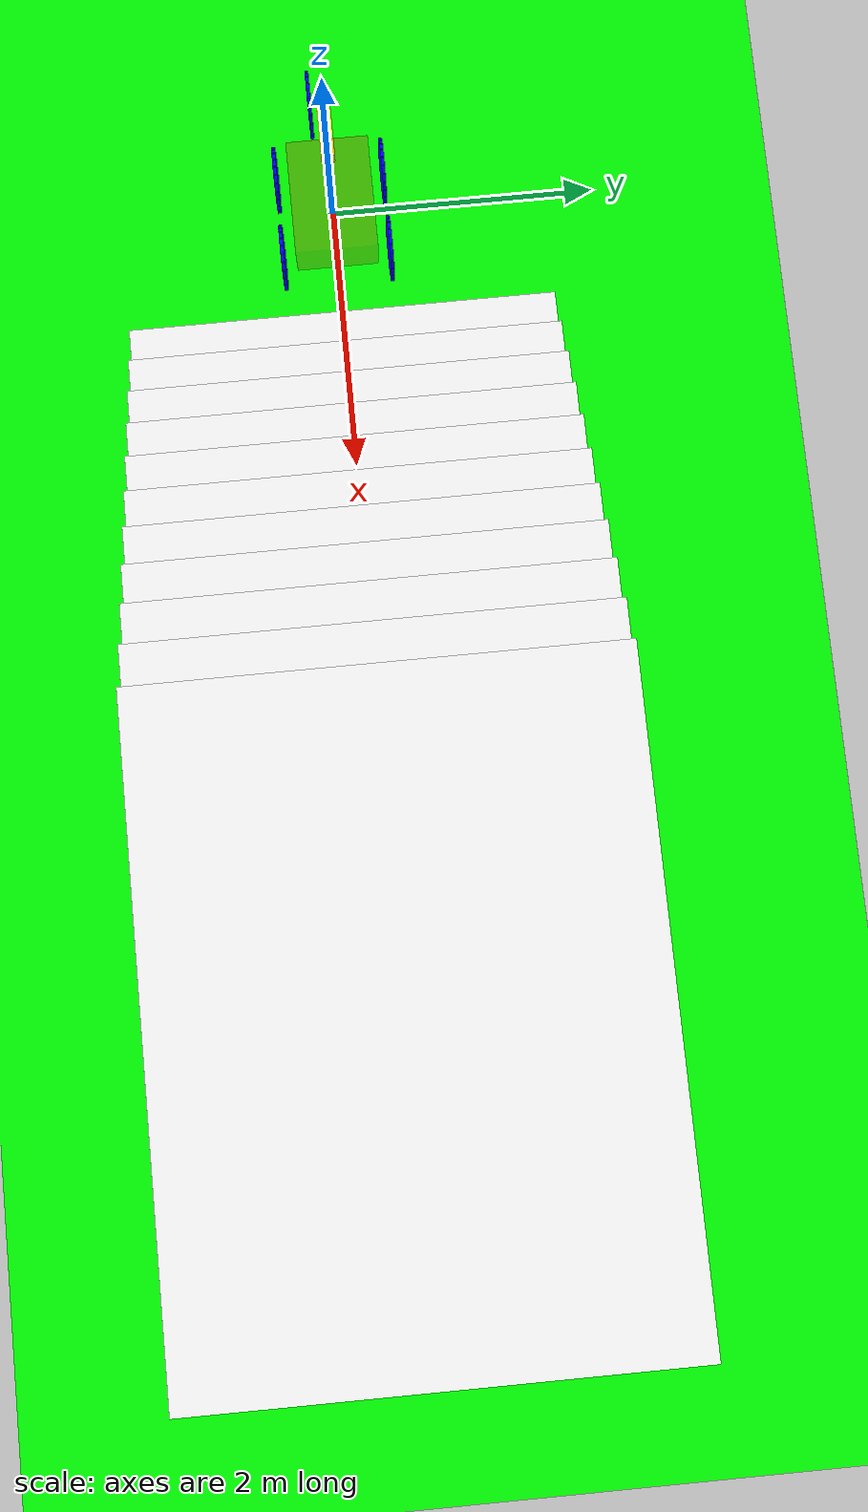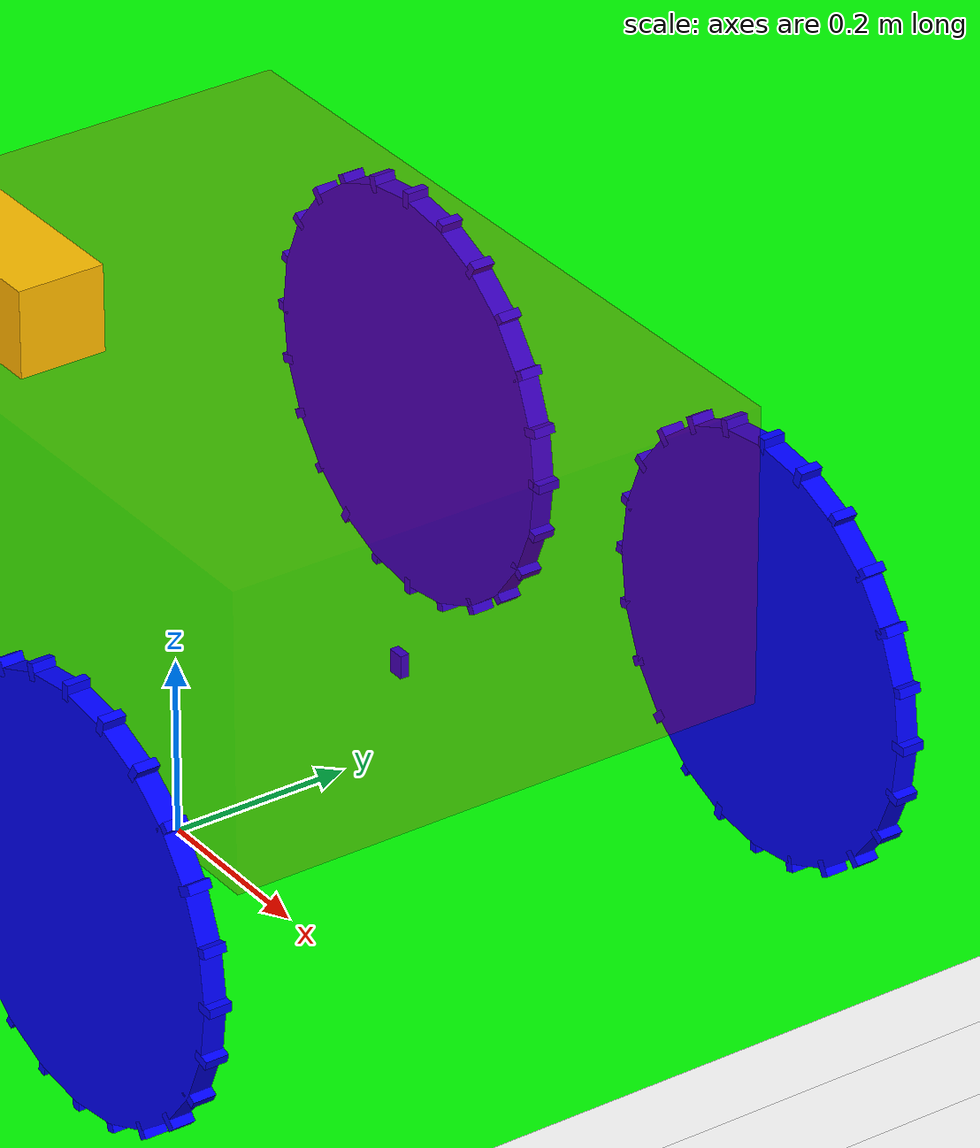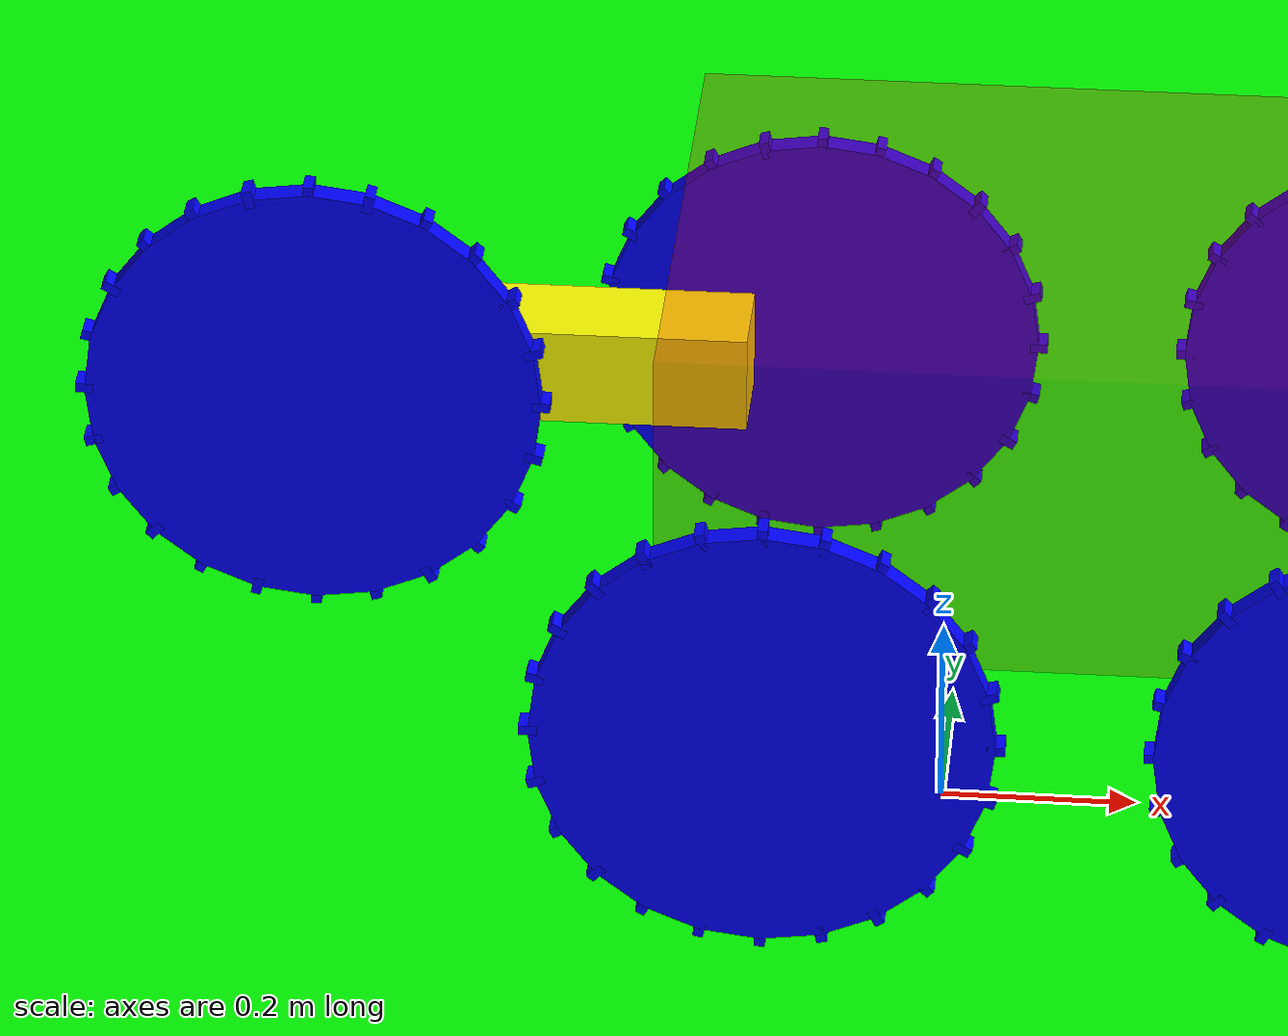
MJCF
<mujoco model="env">
    <option timestep="0.0025" />
    <actuator>
        <motor gear="1.0" ctrllimited= "false" ctrlrange="-75.0 75.0" joint="wheel0" name="motor0"/>
        <motor gear="1.0" ctrllimited= "false" ctrlrange="-75.0 75.0" joint="wheel1" name="motor1"/>
        <motor gear="1.0" ctrllimited= "false" ctrlrange="-75.0 75.0" joint="wheel2" name="motor2"/>
        <motor gear="1.0" ctrllimited= "false" ctrlrange="-75.0 75.0" joint="wheel3" name="motor3"/>
        <motor gear="1.0" ctrllimited= "false" ctrlrange="-75.0 75.0" joint="wheel4" name="motor4"/>
    </actuator>
    <sensor>
        <torque name='torq0' site='wheel0_t'/>
    </sensor>

    <worldbody>
        <body name="frame" pos="0.15 0 0.5">
            <geom mass="50.0" pos="0.0 0.0 0.0" rgba="1 0 0 .25" size="0.42 0.3 0.1651" type="box"></geom>
            <joint type='free' name='frame:base' pos='0 0 0'/>
			<camera euler="0 0 0" fovy="40" name="rgb" pos="0 0 2.5"></camera>
            <body name="mass0" pos="0.25 0.0000 -0.1" >
                <geom mass="40." rgba="0 0 1 1" size="0.009 0.005 0.0125" type="box"/>
            </body>
			<body name="lf_wheel" pos="0.305 -0.4 -0.19" quat="0.7071067811865476 0.7071067811865476 0 0">
				<geom mass="1" rgba="0 0 1 1" size="0.2286 0.0125" type="cylinder"/>
				<joint axis="0 0 1" name="wheel0" type="hinge"/>

				<body name="lf_tread0" pos="0.2286 0.0000 0.0" quat="1.000000 0.0 0.0 0.000000">
					<geom mass="0.001" rgba="0 0 1 1" size="0.009 0.005 0.0125" type="box"/>
				</body>
				<body name="lf_tread1" pos="0.2208 0.0592 0.0" quat="0.991445 0.0 0.0 0.130526">
					<geom mass="0.001" rgba="0 0 1 1" size="0.009 0.005 0.0125" type="box"/>
				</body>
				<body name="lf_tread2" pos="0.1980 0.1143 0.0" quat="0.965926 0.0 0.0 0.258819">
					<geom mass="0.001" rgba="0 0 1 1" size="0.009 0.005 0.0125" type="box"/>
				</body>
				<body name="lf_tread3" pos="0.1616 0.1616 0.0" quat="0.923880 0.0 0.0 0.382683">
					<geom mass="0.001" rgba="0 0 1 1" size="0.009 0.005 0.0125" type="box"/>
				</body>
				<body name="lf_tread4" pos="0.1143 0.1980 0.0" quat="0.866025 0.0 0.0 0.500000">
					<geom mass="0.001" rgba="0 0 1 1" size="0.009 0.005 0.0125" type="box"/>
				</body>
				<body name="lf_tread5" pos="0.0592 0.2208 0.0" quat="0.793353 0.0 0.0 0.608761">
					<geom mass="0.001" rgba="0 0 1 1" size="0.009 0.005 0.0125" type="box"/>
				</body>
				<body name="lf_tread6" pos="-0.0000 0.2286 0.0" quat="0.707107 0.0 0.0 0.707107">
					<geom mass="0.001" rgba="0 0 1 1" size="0.009 0.005 0.0125" type="box"/>
				</body>
				<body name="lf_tread7" pos="-0.0592 0.2208 0.0" quat="0.608761 0.0 0.0 0.793353">
					<geom mass="0.001" rgba="0 0 1 1" size="0.009 0.005 0.0125" type="box"/>
				</body>
				<body name="lf_tread8" pos="-0.1143 0.1980 0.0" quat="0.500000 0.0 0.0 0.866025">
					<geom mass="0.001" rgba="0 0 1 1" size="0.009 0.005 0.0125" type="box"/>
				</body>
				<body name="lf_tread9" pos="-0.1616 0.1616 0.0" quat="0.382683 0.0 0.0 0.923880">
					<geom mass="0.001" rgba="0 0 1 1" size="0.009 0.005 0.0125" type="box"/>
				</body>
				<body name="lf_tread10" pos="-0.1980 0.1143 0.0" quat="0.258819 0.0 0.0 0.965926">
					<geom mass="0.001" rgba="0 0 1 1" size="0.009 0.005 0.0125" type="box"/>
				</body>
				<body name="lf_tread11" pos="-0.2208 0.0592 0.0" quat="0.130526 0.0 0.0 0.991445">
					<geom mass="0.001" rgba="0 0 1 1" size="0.009 0.005 0.0125" type="box"/>
				</body>
				<body name="lf_tread12" pos="-0.2286 -0.0000 0.0" quat="-0.000000 0.0 0.0 1.000000">
					<geom mass="0.001" rgba="0 0 1 1" size="0.009 0.005 0.0125" type="box"/>
				</body>
				<body name="lf_tread13" pos="-0.2208 -0.0592 0.0" quat="-0.130526 0.0 0.0 0.991445">
					<geom mass="0.001" rgba="0 0 1 1" size="0.009 0.005 0.0125" type="box"/>
				</body>
				<body name="lf_tread14" pos="-0.1980 -0.1143 0.0" quat="-0.258819 0.0 0.0 0.965926">
					<geom mass="0.001" rgba="0 0 1 1" size="0.009 0.005 0.0125" type="box"/>
				</body>
				<body name="lf_tread15" pos="-0.1616 -0.1616 0.0" quat="-0.382683 0.0 0.0 0.923880">
					<geom mass="0.001" rgba="0 0 1 1" size="0.009 0.005 0.0125" type="box"/>
				</body>
				<body name="lf_tread16" pos="-0.1143 -0.1980 0.0" quat="-0.500000 0.0 0.0 0.866025">
					<geom mass="0.001" rgba="0 0 1 1" size="0.009 0.005 0.0125" type="box"/>
				</body>
				<body name="lf_tread17" pos="-0.0592 -0.2208 0.0" quat="-0.608761 0.0 0.0 0.793353">
					<geom mass="0.001" rgba="0 0 1 1" size="0.009 0.005 0.0125" type="box"/>
				</body>
				<body name="lf_tread18" pos="0.0000 -0.2286 0.0" quat="-0.707107 0.0 0.0 0.707107">
					<geom mass="0.001" rgba="0 0 1 1" size="0.009 0.005 0.0125" type="box"/>
				</body>
				<body name="lf_tread19" pos="0.0592 -0.2208 0.0" quat="-0.793353 0.0 0.0 0.608761">
					<geom mass="0.001" rgba="0 0 1 1" size="0.009 0.005 0.0125" type="box"/>
				</body>
				<body name="lf_tread20" pos="0.1143 -0.1980 0.0" quat="-0.866025 0.0 0.0 0.500000">
					<geom mass="0.001" rgba="0 0 1 1" size="0.009 0.005 0.0125" type="box"/>
				</body>
				<body name="lf_tread21" pos="0.1616 -0.1616 0.0" quat="-0.923880 0.0 0.0 0.382683">
					<geom mass="0.001" rgba="0 0 1 1" size="0.009 0.005 0.0125" type="box"/>
				</body>
				<body name="lf_tread22" pos="0.1980 -0.1143 0.0" quat="-0.965926 0.0 0.0 0.258819">
					<geom mass="0.001" rgba="0 0 1 1" size="0.009 0.005 0.0125" type="box"/>
				</body>
				<body name="lf_tread23" pos="0.2208 -0.0592 0.0" quat="-0.991445 0.0 0.0 0.130526">
					<geom mass="0.001" rgba="0 0 1 1" size="0.009 0.005 0.0125" type="box"/>
				</body>
			</body>
			<body name="rf_wheel" pos="0.305 0.4 -0.19" quat="0.7071067811865476 0.7071067811865476 0 0">
				<geom mass="1" rgba="0 0 1 1" size="0.2286 0.0125" type="cylinder"/>
				<joint axis="0 0 1" name="wheel1" type="hinge"/>
				<site name="wheel1_t" pos="0 0 0.0" size='0.00005 0.00005 0.00005' rgba='0 1 0 1' type='sphere'/>
				<body name="rf_tread0" pos="0.2286 0.0000 0.0" quat="1.000000 0.0 0.0 0.000000">
					<geom mass="0.001" rgba="0 0 1 1" size="0.009 0.005 0.0125" type="box"/>
				</body>
				<body name="rf_tread1" pos="0.2208 0.0592 0.0" quat="0.991445 0.0 0.0 0.130526">
					<geom mass="0.001" rgba="0 0 1 1" size="0.009 0.005 0.0125" type="box"/>
				</body>
				<body name="rf_tread2" pos="0.1980 0.1143 0.0" quat="0.965926 0.0 0.0 0.258819">
					<geom mass="0.001" rgba="0 0 1 1" size="0.009 0.005 0.0125" type="box"/>
				</body>
				<body name="rf_tread3" pos="0.1616 0.1616 0.0" quat="0.923880 0.0 0.0 0.382683">
					<geom mass="0.001" rgba="0 0 1 1" size="0.009 0.005 0.0125" type="box"/>
				</body>
				<body name="rf_tread4" pos="0.1143 0.1980 0.0" quat="0.866025 0.0 0.0 0.500000">
					<geom mass="0.001" rgba="0 0 1 1" size="0.009 0.005 0.0125" type="box"/>
				</body>
				<body name="rf_tread5" pos="0.0592 0.2208 0.0" quat="0.793353 0.0 0.0 0.608761">
					<geom mass="0.001" rgba="0 0 1 1" size="0.009 0.005 0.0125" type="box"/>
				</body>
				<body name="rf_tread6" pos="-0.0000 0.2286 0.0" quat="0.707107 0.0 0.0 0.707107">
					<geom mass="0.001" rgba="0 0 1 1" size="0.009 0.005 0.0125" type="box"/>
				</body>
				<body name="rf_tread7" pos="-0.0592 0.2208 0.0" quat="0.608761 0.0 0.0 0.793353">
					<geom mass="0.001" rgba="0 0 1 1" size="0.009 0.005 0.0125" type="box"/>
				</body>
				<body name="rf_tread8" pos="-0.1143 0.1980 0.0" quat="0.500000 0.0 0.0 0.866025">
					<geom mass="0.001" rgba="0 0 1 1" size="0.009 0.005 0.0125" type="box"/>
				</body>
				<body name="rf_tread9" pos="-0.1616 0.1616 0.0" quat="0.382683 0.0 0.0 0.923880">
					<geom mass="0.001" rgba="0 0 1 1" size="0.009 0.005 0.0125" type="box"/>
				</body>
				<body name="rf_tread10" pos="-0.1980 0.1143 0.0" quat="0.258819 0.0 0.0 0.965926">
					<geom mass="0.001" rgba="0 0 1 1" size="0.009 0.005 0.0125" type="box"/>
				</body>
				<body name="rf_tread11" pos="-0.2208 0.0592 0.0" quat="0.130526 0.0 0.0 0.991445">
					<geom mass="0.001" rgba="0 0 1 1" size="0.009 0.005 0.0125" type="box"/>
				</body>
				<body name="rf_tread12" pos="-0.2286 -0.0000 0.0" quat="-0.000000 0.0 0.0 1.000000">
					<geom mass="0.001" rgba="0 0 1 1" size="0.009 0.005 0.0125" type="box"/>
				</body>
				<body name="rf_tread13" pos="-0.2208 -0.0592 0.0" quat="-0.130526 0.0 0.0 0.991445">
					<geom mass="0.001" rgba="0 0 1 1" size="0.009 0.005 0.0125" type="box"/>
				</body>
				<body name="rf_tread14" pos="-0.1980 -0.1143 0.0" quat="-0.258819 0.0 0.0 0.965926">
					<geom mass="0.001" rgba="0 0 1 1" size="0.009 0.005 0.0125" type="box"/>
				</body>
				<body name="rf_tread15" pos="-0.1616 -0.1616 0.0" quat="-0.382683 0.0 0.0 0.923880">
					<geom mass="0.001" rgba="0 0 1 1" size="0.009 0.005 0.0125" type="box"/>
				</body>
				<body name="rf_tread16" pos="-0.1143 -0.1980 0.0" quat="-0.500000 0.0 0.0 0.866025">
					<geom mass="0.001" rgba="0 0 1 1" size="0.009 0.005 0.0125" type="box"/>
				</body>
				<body name="rf_tread17" pos="-0.0592 -0.2208 0.0" quat="-0.608761 0.0 0.0 0.793353">
					<geom mass="0.001" rgba="0 0 1 1" size="0.009 0.005 0.0125" type="box"/>
				</body>
				<body name="rf_tread18" pos="0.0000 -0.2286 0.0" quat="-0.707107 0.0 0.0 0.707107">
					<geom mass="0.001" rgba="0 0 1 1" size="0.009 0.005 0.0125" type="box"/>
				</body>
				<body name="rf_tread19" pos="0.0592 -0.2208 0.0" quat="-0.793353 0.0 0.0 0.608761">
					<geom mass="0.001" rgba="0 0 1 1" size="0.009 0.005 0.0125" type="box"/>
				</body>
				<body name="rf_tread20" pos="0.1143 -0.1980 0.0" quat="-0.866025 0.0 0.0 0.500000">
					<geom mass="0.001" rgba="0 0 1 1" size="0.009 0.005 0.0125" type="box"/>
				</body>
				<body name="rf_tread21" pos="0.1616 -0.1616 0.0" quat="-0.923880 0.0 0.0 0.382683">
					<geom mass="0.001" rgba="0 0 1 1" size="0.009 0.005 0.0125" type="box"/>
				</body>
				<body name="rf_tread22" pos="0.1980 -0.1143 0.0" quat="-0.965926 0.0 0.0 0.258819">
					<geom mass="0.001" rgba="0 0 1 1" size="0.009 0.005 0.0125" type="box"/>
				</body>
				<body name="rf_tread23" pos="0.2208 -0.0592 0.0" quat="-0.991445 0.0 0.0 0.130526">
					<geom mass="0.001" rgba="0 0 1 1" size="0.009 0.005 0.0125" type="box"/>
				</body>
			</body>
			<body name="lb_wheel" pos="-0.305 -0.4 -0.19" quat="0.7071067811865476 0.7071067811865476 0 0">
				<geom mass="1" rgba="0 0 1 1" size="0.2286 0.0125" type="cylinder"/>
				<joint axis="0 0 1" name="wheel2" type="hinge"/>
				<site name="wheel2_t" pos="0 0 0.0" size='0.00005 0.00005 0.00005' rgba='0 1 0 1' type='sphere'/>
				<body name="lb_tread0" pos="0.2286 0.0000 0.0" quat="1.000000 0.0 0.0 0.000000">
					<geom mass="0.001" rgba="0 0 1 1" size="0.009 0.005 0.0125" type="box"/>
				</body>
				<body name="lb_tread1" pos="0.2208 0.0592 0.0" quat="0.991445 0.0 0.0 0.130526">
					<geom mass="0.001" rgba="0 0 1 1" size="0.009 0.005 0.0125" type="box"/>
				</body>
				<body name="lb_tread2" pos="0.1980 0.1143 0.0" quat="0.965926 0.0 0.0 0.258819">
					<geom mass="0.001" rgba="0 0 1 1" size="0.009 0.005 0.0125" type="box"/>
				</body>
				<body name="lb_tread3" pos="0.1616 0.1616 0.0" quat="0.923880 0.0 0.0 0.382683">
					<geom mass="0.001" rgba="0 0 1 1" size="0.009 0.005 0.0125" type="box"/>
				</body>
				<body name="lb_tread4" pos="0.1143 0.1980 0.0" quat="0.866025 0.0 0.0 0.500000">
					<geom mass="0.001" rgba="0 0 1 1" size="0.009 0.005 0.0125" type="box"/>
				</body>
				<body name="lb_tread5" pos="0.0592 0.2208 0.0" quat="0.793353 0.0 0.0 0.608761">
					<geom mass="0.001" rgba="0 0 1 1" size="0.009 0.005 0.0125" type="box"/>
				</body>
				<body name="lb_tread6" pos="-0.0000 0.2286 0.0" quat="0.707107 0.0 0.0 0.707107">
					<geom mass="0.001" rgba="0 0 1 1" size="0.009 0.005 0.0125" type="box"/>
				</body>
				<body name="lb_tread7" pos="-0.0592 0.2208 0.0" quat="0.608761 0.0 0.0 0.793353">
					<geom mass="0.001" rgba="0 0 1 1" size="0.009 0.005 0.0125" type="box"/>
				</body>
				<body name="lb_tread8" pos="-0.1143 0.1980 0.0" quat="0.500000 0.0 0.0 0.866025">
					<geom mass="0.001" rgba="0 0 1 1" size="0.009 0.005 0.0125" type="box"/>
				</body>
				<body name="lb_tread9" pos="-0.1616 0.1616 0.0" quat="0.382683 0.0 0.0 0.923880">
					<geom mass="0.001" rgba="0 0 1 1" size="0.009 0.005 0.0125" type="box"/>
				</body>
				<body name="lb_tread10" pos="-0.1980 0.1143 0.0" quat="0.258819 0.0 0.0 0.965926">
					<geom mass="0.001" rgba="0 0 1 1" size="0.009 0.005 0.0125" type="box"/>
				</body>
				<body name="lb_tread11" pos="-0.2208 0.0592 0.0" quat="0.130526 0.0 0.0 0.991445">
					<geom mass="0.001" rgba="0 0 1 1" size="0.009 0.005 0.0125" type="box"/>
				</body>
				<body name="lb_tread12" pos="-0.2286 -0.0000 0.0" quat="-0.000000 0.0 0.0 1.000000">
					<geom mass="0.001" rgba="0 0 1 1" size="0.009 0.005 0.0125" type="box"/>
				</body>
				<body name="lb_tread13" pos="-0.2208 -0.0592 0.0" quat="-0.130526 0.0 0.0 0.991445">
					<geom mass="0.001" rgba="0 0 1 1" size="0.009 0.005 0.0125" type="box"/>
				</body>
				<body name="lb_tread14" pos="-0.1980 -0.1143 0.0" quat="-0.258819 0.0 0.0 0.965926">
					<geom mass="0.001" rgba="0 0 1 1" size="0.009 0.005 0.0125" type="box"/>
				</body>
				<body name="lb_tread15" pos="-0.1616 -0.1616 0.0" quat="-0.382683 0.0 0.0 0.923880">
					<geom mass="0.001" rgba="0 0 1 1" size="0.009 0.005 0.0125" type="box"/>
				</body>
				<body name="lb_tread16" pos="-0.1143 -0.1980 0.0" quat="-0.500000 0.0 0.0 0.866025">
					<geom mass="0.001" rgba="0 0 1 1" size="0.009 0.005 0.0125" type="box"/>
				</body>
				<body name="lb_tread17" pos="-0.0592 -0.2208 0.0" quat="-0.608761 0.0 0.0 0.793353">
					<geom mass="0.001" rgba="0 0 1 1" size="0.009 0.005 0.0125" type="box"/>
				</body>
				<body name="lb_tread18" pos="0.0000 -0.2286 0.0" quat="-0.707107 0.0 0.0 0.707107">
					<geom mass="0.001" rgba="0 0 1 1" size="0.009 0.005 0.0125" type="box"/>
				</body>
				<body name="lb_tread19" pos="0.0592 -0.2208 0.0" quat="-0.793353 0.0 0.0 0.608761">
					<geom mass="0.001" rgba="0 0 1 1" size="0.009 0.005 0.0125" type="box"/>
				</body>
				<body name="lb_tread20" pos="0.1143 -0.1980 0.0" quat="-0.866025 0.0 0.0 0.500000">
					<geom mass="0.001" rgba="0 0 1 1" size="0.009 0.005 0.0125" type="box"/>
				</body>
				<body name="lb_tread21" pos="0.1616 -0.1616 0.0" quat="-0.923880 0.0 0.0 0.382683">
					<geom mass="0.001" rgba="0 0 1 1" size="0.009 0.005 0.0125" type="box"/>
				</body>
				<body name="lb_tread22" pos="0.1980 -0.1143 0.0" quat="-0.965926 0.0 0.0 0.258819">
					<geom mass="0.001" rgba="0 0 1 1" size="0.009 0.005 0.0125" type="box"/>
				</body>
				<body name="lb_tread23" pos="0.2208 -0.0592 0.0" quat="-0.991445 0.0 0.0 0.130526">
					<geom mass="0.001" rgba="0 0 1 1" size="0.009 0.005 0.0125" type="box"/>
				</body>
			</body>
			<body name="rb_wheel" pos="-0.305 0.4 -0.19" quat="0.7071067811865476 0.7071067811865476 0 0">
				<geom mass="1" rgba="0 0 1 1" size="0.2286 0.0125" type="cylinder"/>
				<joint axis="0 0 1" name="wheel3" type="hinge"/>
				<site name="wheel3_t" pos="0 0 0.0" size='0.00005 0.00005 0.00005' rgba='0 1 0 1' type='sphere'/>
				<body name="rb_tread0" pos="0.2286 0.0000 0.0" quat="1.000000 0.0 0.0 0.000000">
					<geom mass="0.001" rgba="0 0 1 1" size="0.009 0.005 0.0125" type="box"/>
				</body>
				<body name="rb_tread1" pos="0.2208 0.0592 0.0" quat="0.991445 0.0 0.0 0.130526">
					<geom mass="0.001" rgba="0 0 1 1" size="0.009 0.005 0.0125" type="box"/>
				</body>
				<body name="rb_tread2" pos="0.1980 0.1143 0.0" quat="0.965926 0.0 0.0 0.258819">
					<geom mass="0.001" rgba="0 0 1 1" size="0.009 0.005 0.0125" type="box"/>
				</body>
				<body name="rb_tread3" pos="0.1616 0.1616 0.0" quat="0.923880 0.0 0.0 0.382683">
					<geom mass="0.001" rgba="0 0 1 1" size="0.009 0.005 0.0125" type="box"/>
				</body>
				<body name="rb_tread4" pos="0.1143 0.1980 0.0" quat="0.866025 0.0 0.0 0.500000">
					<geom mass="0.001" rgba="0 0 1 1" size="0.009 0.005 0.0125" type="box"/>
				</body>
				<body name="rb_tread5" pos="0.0592 0.2208 0.0" quat="0.793353 0.0 0.0 0.608761">
					<geom mass="0.001" rgba="0 0 1 1" size="0.009 0.005 0.0125" type="box"/>
				</body>
				<body name="rb_tread6" pos="-0.0000 0.2286 0.0" quat="0.707107 0.0 0.0 0.707107">
					<geom mass="0.001" rgba="0 0 1 1" size="0.009 0.005 0.0125" type="box"/>
				</body>
				<body name="rb_tread7" pos="-0.0592 0.2208 0.0" quat="0.608761 0.0 0.0 0.793353">
					<geom mass="0.001" rgba="0 0 1 1" size="0.009 0.005 0.0125" type="box"/>
				</body>
				<body name="rb_tread8" pos="-0.1143 0.1980 0.0" quat="0.500000 0.0 0.0 0.866025">
					<geom mass="0.001" rgba="0 0 1 1" size="0.009 0.005 0.0125" type="box"/>
				</body>
				<body name="rb_tread9" pos="-0.1616 0.1616 0.0" quat="0.382683 0.0 0.0 0.923880">
					<geom mass="0.001" rgba="0 0 1 1" size="0.009 0.005 0.0125" type="box"/>
				</body>
				<body name="rb_tread10" pos="-0.1980 0.1143 0.0" quat="0.258819 0.0 0.0 0.965926">
					<geom mass="0.001" rgba="0 0 1 1" size="0.009 0.005 0.0125" type="box"/>
				</body>
				<body name="rb_tread11" pos="-0.2208 0.0592 0.0" quat="0.130526 0.0 0.0 0.991445">
					<geom mass="0.001" rgba="0 0 1 1" size="0.009 0.005 0.0125" type="box"/>
				</body>
				<body name="rb_tread12" pos="-0.2286 -0.0000 0.0" quat="-0.000000 0.0 0.0 1.000000">
					<geom mass="0.001" rgba="0 0 1 1" size="0.009 0.005 0.0125" type="box"/>
				</body>
				<body name="rb_tread13" pos="-0.2208 -0.0592 0.0" quat="-0.130526 0.0 0.0 0.991445">
					<geom mass="0.001" rgba="0 0 1 1" size="0.009 0.005 0.0125" type="box"/>
				</body>
				<body name="rb_tread14" pos="-0.1980 -0.1143 0.0" quat="-0.258819 0.0 0.0 0.965926">
					<geom mass="0.001" rgba="0 0 1 1" size="0.009 0.005 0.0125" type="box"/>
				</body>
				<body name="rb_tread15" pos="-0.1616 -0.1616 0.0" quat="-0.382683 0.0 0.0 0.923880">
					<geom mass="0.001" rgba="0 0 1 1" size="0.009 0.005 0.0125" type="box"/>
				</body>
				<body name="rb_tread16" pos="-0.1143 -0.1980 0.0" quat="-0.500000 0.0 0.0 0.866025">
					<geom mass="0.001" rgba="0 0 1 1" size="0.009 0.005 0.0125" type="box"/>
				</body>
				<body name="rb_tread17" pos="-0.0592 -0.2208 0.0" quat="-0.608761 0.0 0.0 0.793353">
					<geom mass="0.001" rgba="0 0 1 1" size="0.009 0.005 0.0125" type="box"/>
				</body>
				<body name="rb_tread18" pos="0.0000 -0.2286 0.0" quat="-0.707107 0.0 0.0 0.707107">
					<geom mass="0.001" rgba="0 0 1 1" size="0.009 0.005 0.0125" type="box"/>
				</body>
				<body name="rb_tread19" pos="0.0592 -0.2208 0.0" quat="-0.793353 0.0 0.0 0.608761">
					<geom mass="0.001" rgba="0 0 1 1" size="0.009 0.005 0.0125" type="box"/>
				</body>
				<body name="rb_tread20" pos="0.1143 -0.1980 0.0" quat="-0.866025 0.0 0.0 0.500000">
					<geom mass="0.001" rgba="0 0 1 1" size="0.009 0.005 0.0125" type="box"/>
				</body>
				<body name="rb_tread21" pos="0.1616 -0.1616 0.0" quat="-0.923880 0.0 0.0 0.382683">
					<geom mass="0.001" rgba="0 0 1 1" size="0.009 0.005 0.0125" type="box"/>
				</body>
				<body name="rb_tread22" pos="0.1980 -0.1143 0.0" quat="-0.965926 0.0 0.0 0.258819">
					<geom mass="0.001" rgba="0 0 1 1" size="0.009 0.005 0.0125" type="box"/>
				</body>
				<body name="rb_tread23" pos="0.2208 -0.0592 0.0" quat="-0.991445 0.0 0.0 0.130526">
					<geom mass="0.001" rgba="0 0 1 1" size="0.009 0.005 0.0125" type="box"/>
				</body>
			</body>
            <body name="rearlink" pos="-0.563 0.0 0.0" quat="0.7071067811865476 0.7071067811865476 0 0">>
                <geom mass="5.0" pos="0 0 0" rgba="1 1 0 1" size="0.2143 0.05 0.05" type="box"></geom>
                <joint type='hinge' name='frame:ext' pos='0.563 0 0' stiffness="10" damping="500" springref="0.265"/>
                <site name="wheel0_t" pos="0.563 0 0.0" size='0.00005 0.00005 0.00005' rgba='0 1 0 1' type='sphere'/>
                <body name="back_wheel" pos="-0.2143 0.0 0.1" >
                    <geom mass="1" rgba="0 0 1 1" size="0.2286 0.0125" type="cylinder"/>
                    <joint axis="0 0 1" name="wheel4" type="hinge"/>
                    <site name="wheel4_t" pos="0 0 0.0" size='0.00005 0.00005 0.00005' rgba='0 1 0 1' type='sphere'/>
                    <body name="b_tread0" pos="0.2286 0.0000 0.0" quat="1.000000 0.0 0.0 0.000000">
                        <geom mass="0.001" rgba="0 0 1 1" size="0.009 0.005 0.0125" type="box"/>
                    </body>
                    <body name="b_tread1" pos="0.2208 0.0592 0.0" quat="0.991445 0.0 0.0 0.130526">
                        <geom mass="0.001" rgba="0 0 1 1" size="0.009 0.005 0.0125" type="box"/>
                    </body>
                    <body name="b_tread2" pos="0.1980 0.1143 0.0" quat="0.965926 0.0 0.0 0.258819">
                        <geom mass="0.001" rgba="0 0 1 1" size="0.009 0.005 0.0125" type="box"/>
                    </body>
                    <body name="b_tread3" pos="0.1616 0.1616 0.0" quat="0.923880 0.0 0.0 0.382683">
                        <geom mass="0.001" rgba="0 0 1 1" size="0.009 0.005 0.0125" type="box"/>
                    </body>
                    <body name="b_tread4" pos="0.1143 0.1980 0.0" quat="0.866025 0.0 0.0 0.500000">
                        <geom mass="0.001" rgba="0 0 1 1" size="0.009 0.005 0.0125" type="box"/>
                    </body>
                    <body name="b_tread5" pos="0.0592 0.2208 0.0" quat="0.793353 0.0 0.0 0.608761">
                        <geom mass="0.001" rgba="0 0 1 1" size="0.009 0.005 0.0125" type="box"/>
                    </body>
                    <body name="b_tread6" pos="-0.0000 0.2286 0.0" quat="0.707107 0.0 0.0 0.707107">
                        <geom mass="0.001" rgba="0 0 1 1" size="0.009 0.005 0.0125" type="box"/>
                    </body>
                    <body name="b_tread7" pos="-0.0592 0.2208 0.0" quat="0.608761 0.0 0.0 0.793353">
                        <geom mass="0.001" rgba="0 0 1 1" size="0.009 0.005 0.0125" type="box"/>
                    </body>
                    <body name="b_tread8" pos="-0.1143 0.1980 0.0" quat="0.500000 0.0 0.0 0.866025">
                        <geom mass="0.001" rgba="0 0 1 1" size="0.009 0.005 0.0125" type="box"/>
                    </body>
                    <body name="b_tread9" pos="-0.1616 0.1616 0.0" quat="0.382683 0.0 0.0 0.923880">
                        <geom mass="0.001" rgba="0 0 1 1" size="0.009 0.005 0.0125" type="box"/>
                    </body>
                    <body name="b_tread10" pos="-0.1980 0.1143 0.0" quat="0.258819 0.0 0.0 0.965926">
                        <geom mass="0.001" rgba="0 0 1 1" size="0.009 0.005 0.0125" type="box"/>
                    </body>
                    <body name="b_tread11" pos="-0.2208 0.0592 0.0" quat="0.130526 0.0 0.0 0.991445">
                        <geom mass="0.001" rgba="0 0 1 1" size="0.009 0.005 0.0125" type="box"/>
                    </body>
                    <body name="b_tread12" pos="-0.2286 -0.0000 0.0" quat="-0.000000 0.0 0.0 1.000000">
                        <geom mass="0.001" rgba="0 0 1 1" size="0.009 0.005 0.0125" type="box"/>
                    </body>
                    <body name="b_tread13" pos="-0.2208 -0.0592 0.0" quat="-0.130526 0.0 0.0 0.991445">
                        <geom mass="0.001" rgba="0 0 1 1" size="0.009 0.005 0.0125" type="box"/>
                    </body>
                    <body name="b_tread14" pos="-0.1980 -0.1143 0.0" quat="-0.258819 0.0 0.0 0.965926">
                        <geom mass="0.001" rgba="0 0 1 1" size="0.009 0.005 0.0125" type="box"/>
                    </body>
                    <body name="b_tread15" pos="-0.1616 -0.1616 0.0" quat="-0.382683 0.0 0.0 0.923880">
                        <geom mass="0.001" rgba="0 0 1 1" size="0.009 0.005 0.0125" type="box"/>
                    </body>
                    <body name="b_tread16" pos="-0.1143 -0.1980 0.0" quat="-0.500000 0.0 0.0 0.866025">
                        <geom mass="0.001" rgba="0 0 1 1" size="0.009 0.005 0.0125" type="box"/>
                    </body>
                    <body name="b_tread17" pos="-0.0592 -0.2208 0.0" quat="-0.608761 0.0 0.0 0.793353">
                        <geom mass="0.001" rgba="0 0 1 1" size="0.009 0.005 0.0125" type="box"/>
                    </body>
                    <body name="b_tread18" pos="0.0000 -0.2286 0.0" quat="-0.707107 0.0 0.0 0.707107">
                        <geom mass="0.001" rgba="0 0 1 1" size="0.009 0.005 0.0125" type="box"/>
                    </body>
                    <body name="b_tread19" pos="0.0592 -0.2208 0.0" quat="-0.793353 0.0 0.0 0.608761">
                        <geom mass="0.001" rgba="0 0 1 1" size="0.009 0.005 0.0125" type="box"/>
                    </body>
                    <body name="b_tread20" pos="0.1143 -0.1980 0.0" quat="-0.866025 0.0 0.0 0.500000">
                        <geom mass="0.001" rgba="0 0 1 1" size="0.009 0.005 0.0125" type="box"/>
                    </body>
                    <body name="b_tread21" pos="0.1616 -0.1616 0.0" quat="-0.923880 0.0 0.0 0.382683">
                        <geom mass="0.001" rgba="0 0 1 1" size="0.009 0.005 0.0125" type="box"/>
                    </body>
                    <body name="b_tread22" pos="0.1980 -0.1143 0.0" quat="-0.965926 0.0 0.0 0.258819">
                        <geom mass="0.001" rgba="0 0 1 1" size="0.009 0.005 0.0125" type="box"/>
                    </body>
                    <body name="b_tread23" pos="0.2208 -0.0592 0.0" quat="-0.991445 0.0 0.0 0.130526">
                        <geom mass="0.001" rgba="0 0 1 1" size="0.009 0.005 0.0125" type="box"/>
                    </body>
                </body>
            </body>

        </body>

        <body name="floor" pos="0 0 0.0">
            <geom condim="6" size="20.0 20.0 0.02" rgba="0 1 0 1" type="box"/>
            <body name="step0" pos="1.0 0 0.08636">
                <geom condim="3" size="0.14605 1.61 0.08636" rgba="1 1 1 1" type="box"/>
            </body>
            <body name="step1" pos="1.2921 0.0 0.17272">
                <geom condim="3" size="0.14605 1.61 0.17272" rgba="1 1 1 1" type="box"/>
            </body>
            <body name="step2" pos="1.5842 0.0 0.25908">
                <geom condim="3" size="0.14605 1.61 0.25908" rgba="1 1 1 1" type="box"/>
            </body>
            <body name="step3" pos="1.8763 0.0 0.34544">
                <geom condim="3" size="0.14605 1.61 0.34544" rgba="1 1 1 1" type="box"/>
            </body>
            <body name="step4" pos="2.1684 0.0 0.4318">
                <geom condim="3" size="0.14605 1.61 0.4318" rgba="1 1 1 1" type="box"/>
            </body>
            <body name="step5" pos="2.4605 0.0 0.51816">
                <geom condim="3" size="0.14605 1.61 0.51816" rgba="1 1 1 1" type="box"/>
            </body>
            <body name="step6" pos="2.7526 0.0 0.60452">
                <geom condim="3" size="0.14605 1.61 0.60452" rgba="1 1 1 1" type="box"/>
            </body>
            <body name="step7" pos="3.0447 0.0 0.69088">
                <geom condim="3" size="0.14605 1.61 0.69088" rgba="1 1 1 1" type="box"/>
            </body>
            <body name="step8" pos="3.3368 0.0 0.77724">
                <geom condim="3" size="0.14605 1.61 0.77724" rgba="1 1 1 1" type="box"/>
            </body>
            <body name="step9" pos="3.6289 0.0 0.8636">
                <geom condim="3" size="0.14605 1.61 0.8636" rgba="1 1 1 1" type="box"/>
            </body>
            <body name="step10" pos="5.921 0.0 0.94996">
                <geom condim="3" size="2.14605 1.61 0.94996" rgba="1 1 1 1" type="box"/>
                <site name='wypt0' pos="0 0 0.94996" size='0.0005 0.0005 0.0005' rgba='1 1 0 1' type='sphere'/>
            </body>

        </body>
    </worldbody>

</mujoco>
